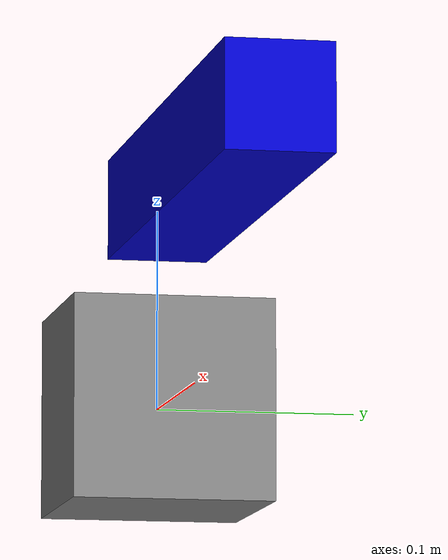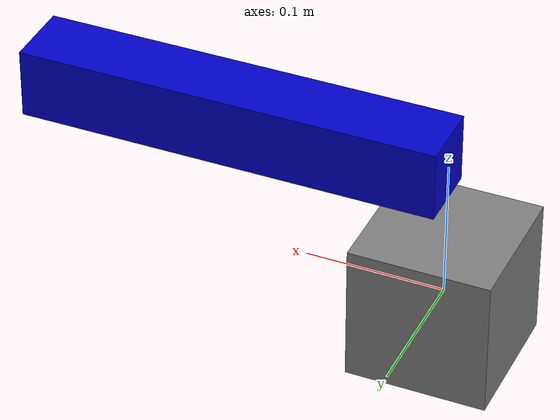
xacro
<?xml version="1.0"?>
<!--
  simple_joint.urdf.xacro
  极简的单关节机器人 URDF

  这个文件定义了:
  1. 一个固定的 base_link
  2. 一个可旋转的 joint1
  3. 一个移动的 link1
  4. ros2_control 配置（使用我们自己的 Hardware Interface）
-->
<robot xmlns:xacro="http://www.ros.org/wiki/xacro" name="simple_joint_robot">

  <!-- 机器人结构定义 -->

  <!-- 基座链接（固定在世界坐标系） -->
  <link name="base_link">
    <visual>
      <geometry>
        <box size="0.1 0.1 0.1"/>
      </geometry>
      <material name="gray">
        <color rgba="0.5 0.5 0.5 1"/>
      </material>
    </visual>
  </link>

  <!-- 关节：连接 base_link 和 link1 -->
  <joint name="joint1" type="revolute">
    <parent link="base_link"/>
    <child link="link1"/>
    <origin xyz="0 0 0.1" rpy="0 0 0"/>
    <axis xyz="0 0 1"/>
    <limit lower="-3.14" upper="3.14" effort="10" velocity="1"/>
  </joint>

  <!-- 移动链接 -->
  <link name="link1">
    <visual>
      <origin xyz="0.15 0 0"/>
      <geometry>
        <box size="0.3 0.05 0.05"/>
      </geometry>
      <material name="blue">
        <color rgba="0 0 0.8 1"/>
      </material>
    </visual>
  </link>

  <!-- ros2_control 配置 -->
  <!--
    这是 ros2_control 的核心配置！
    它告诉 ros2_control:
    1. 使用哪个 Hardware Interface 插件
    2. 有哪些关节
    3. 每个关节支持哪些接口（位置/速度/力矩）
  -->
  <ros2_control name="SimpleJointSystem" type="system">
    <!-- 指定 Hardware Interface 插件 -->
    <hardware>
      <plugin>ros2_learning_control_demo/SimpleJointHardware</plugin>
    </hardware>

    <!-- 关节配置 -->
    <joint name="joint1">
      <!-- 命令接口：控制器可以发送位置命令 -->
      <command_interface name="position"/>

      <!-- 状态接口：控制器可以读取当前位置 -->
      <state_interface name="position">
        <param name="initial_value">0.0</param>
      </state_interface>
    </joint>
  </ros2_control>

</robot>
